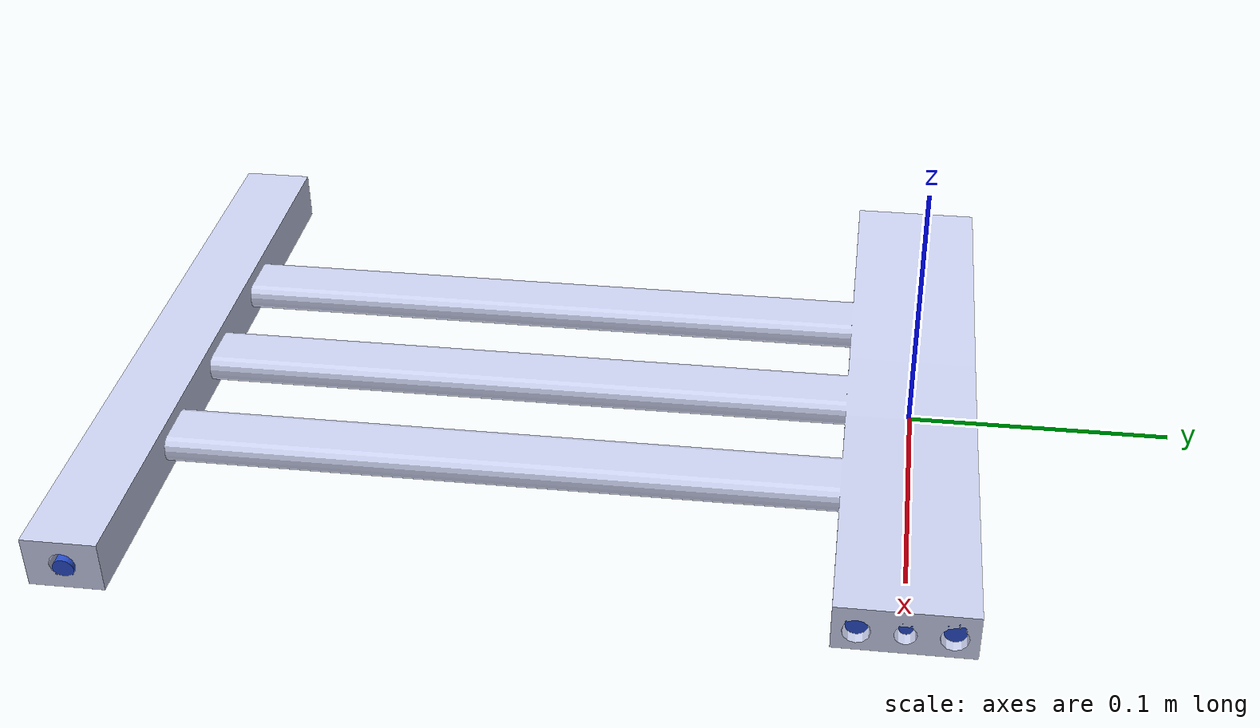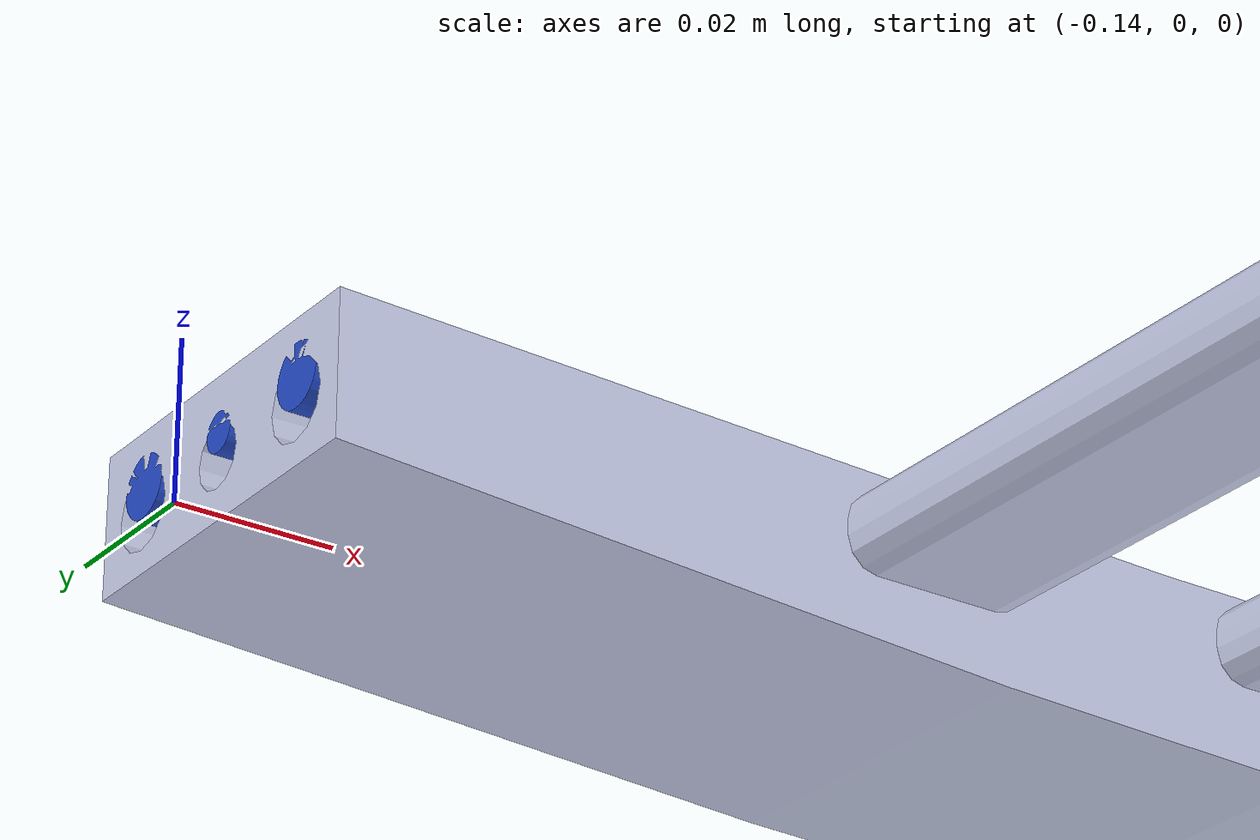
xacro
<?xml version="1.0" encoding="utf-8"?>
<robot name="PART4.SLDPRT" xmlns:xacro="http://www.ros.org/wiki/xacro">

	<link name="PART4.SLDPRT">
		<inertial>
			<origin xyz="1.0281E-16 -0.11943 0.0059532" rpy="0 0 0"></origin>
			<mass value="0.59524"></mass>
			<inertia ixx="0.0095724" ixy="6.7825E-18" ixz="4.1203E-17" iyy="0.0027084" iyz="-7.4418E-05" izz="0.012246"></inertia>
		</inertial>
		<visual>
			<origin xyz="0 0 0" rpy="0 0 0"></origin>
			<geometry>
				<mesh filename="package://object_description/urdfs_from_hj/PART4.SLDPRT/meshes/PART4.SLDPRT.STL"></mesh>
			</geometry>
			<material name="">
				<color rgba="0.79216 0.81961 0.93333 1"></color>
			</material>
		</visual>
		<collision>
			<origin xyz="0 0 0" rpy="0 0 0"></origin>
			<geometry>
				<mesh filename="package://object_description/urdfs_from_hj/PART4.SLDPRT/meshes/PART4.SLDPRT.STL"></mesh>
			</geometry>
		</collision>
	</link>
	<link name="PART4 hole blocked 1">
		<visual>
			<origin xyz="0 0 0" rpy="0 0 0"></origin>
			<geometry>
				<cylinder length="0.015" radius="0.004"></cylinder>
			</geometry>
		</visual>
	</link>
	<link name="PART4 hole blocked 2">
		<visual>
			<origin xyz="0 0 0" rpy="0 0 0"></origin>
			<geometry>
				<cylinder length="0.015" radius="0.004"></cylinder>
			</geometry>
		</visual>
	</link>
	<link name="PART4 hole blocked 3">
		<visual>
			<origin xyz="0 0 0" rpy="0 0 0"></origin>
			<geometry>
				<cylinder length="0.015" radius="0.004"></cylinder>
			</geometry>
		</visual>
	</link>
	<link name="PART4 hole blocked 4">
		<visual>
			<origin xyz="0 0 0" rpy="0 0 0"></origin>
			<geometry>
				<cylinder length="0.015" radius="0.004"></cylinder>
			</geometry>
		</visual>
	</link>
	<link name="PART4 hole blocked 5">
		<visual>
			<origin xyz="0 0 0" rpy="0 0 0"></origin>
			<geometry>
				<cylinder length="0.015" radius="0.0025"></cylinder>
			</geometry>
		</visual>
	</link>
	<link name="PART4 hole blocked 6">
		<visual>
			<origin xyz="0 0 0" rpy="0 0 0"></origin>
			<geometry>
				<cylinder length="0.015" radius="0.0025"></cylinder>
			</geometry>
		</visual>
	</link>
	<link name="PART4 hole blocked 7">
		<visual>
			<origin xyz="0 0 0" rpy="0 0 0"></origin>
			<geometry>
				<cylinder length="0.015" radius="0.004"></cylinder>
			</geometry>
		</visual>
	</link>
	<link name="PART4 hole blocked 8">
		<visual>
			<origin xyz="0 0 0" rpy="0 0 0"></origin>
			<geometry>
				<cylinder length="0.015" radius="0.004"></cylinder>
			</geometry>
		</visual>
	</link>
	<joint name="PART4 hole blocked 1 joint" type="fixed">
		<origin xyz="-0.1275 -0.294 0.005" rpy="-0.0 1.57079632679 0.0"></origin>
		<parent link="PART4.SLDPRT"></parent>
		<child link="PART4 hole blocked 1"></child>
	</joint>
	<joint name="PART4 hole blocked 2 joint" type="fixed">
		<origin xyz="0.1275 -0.294 0.005" rpy="0.0 -1.57079632679 0.0"></origin>
		<parent link="PART4.SLDPRT"></parent>
		<child link="PART4 hole blocked 2"></child>
	</joint>
	<joint name="PART4 hole blocked 3 joint" type="fixed">
		<origin xyz="-0.1275 -0.0165 0.01" rpy="-0.0 1.57079632679 0.0"></origin>
		<parent link="PART4.SLDPRT"></parent>
		<child link="PART4 hole blocked 3"></child>
	</joint>
	<joint name="PART4 hole blocked 4 joint" type="fixed">
		<origin xyz="0.1275 -0.0165 0.01" rpy="0.0 -1.57079632679 0.0"></origin>
		<parent link="PART4.SLDPRT"></parent>
		<child link="PART4 hole blocked 4"></child>
	</joint>
	<joint name="PART4 hole blocked 5 joint" type="fixed">
		<origin xyz="-0.1275 0.0 0.01" rpy="-0.0 1.57079632679 0.0"></origin>
		<parent link="PART4.SLDPRT"></parent>
		<child link="PART4 hole blocked 5"></child>
	</joint>
	<joint name="PART4 hole blocked 6 joint" type="fixed">
		<origin xyz="0.1275 0.0 0.01" rpy="0.0 -1.57079632679 0.0"></origin>
		<parent link="PART4.SLDPRT"></parent>
		<child link="PART4 hole blocked 6"></child>
	</joint>
	<joint name="PART4 hole blocked 7 joint" type="fixed">
		<origin xyz="-0.1275 0.0165 0.01" rpy="-0.0 1.57079632679 0.0"></origin>
		<parent link="PART4.SLDPRT"></parent>
		<child link="PART4 hole blocked 7"></child>
	</joint>
	<joint name="PART4 hole blocked 8 joint" type="fixed">
		<origin xyz="0.1275 0.0165 0.01" rpy="0.0 -1.57079632679 0.0"></origin>
		<parent link="PART4.SLDPRT"></parent>
		<child link="PART4 hole blocked 8"></child>
	</joint>
	<gazebo reference="PART4 hole blocked 1">
		<material>Gazebo/BlueTransparent</material>
	</gazebo>
	<gazebo reference="PART4 hole blocked 2">
		<material>Gazebo/BlueTransparent</material>
	</gazebo>
	<gazebo reference="PART4 hole blocked 3">
		<material>Gazebo/BlueTransparent</material>
	</gazebo>
	<gazebo reference="PART4 hole blocked 4">
		<material>Gazebo/BlueTransparent</material>
	</gazebo>
	<gazebo reference="PART4 hole blocked 5">
		<material>Gazebo/BlueTransparent</material>
	</gazebo>
	<gazebo reference="PART4 hole blocked 6">
		<material>Gazebo/BlueTransparent</material>
	</gazebo>
	<gazebo reference="PART4 hole blocked 7">
		<material>Gazebo/BlueTransparent</material>
	</gazebo>
	<gazebo reference="PART4 hole blocked 8">
		<material>Gazebo/BlueTransparent</material>
	</gazebo>
</robot>
